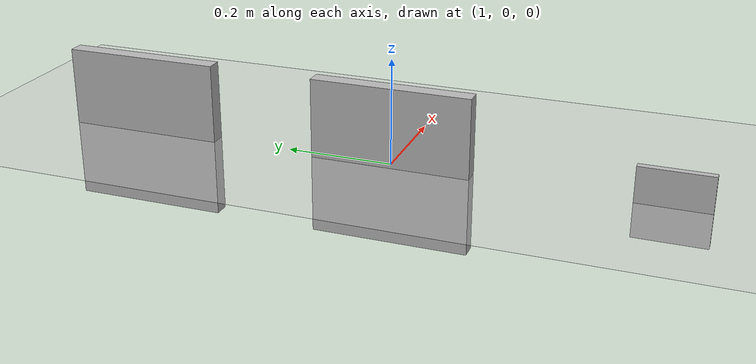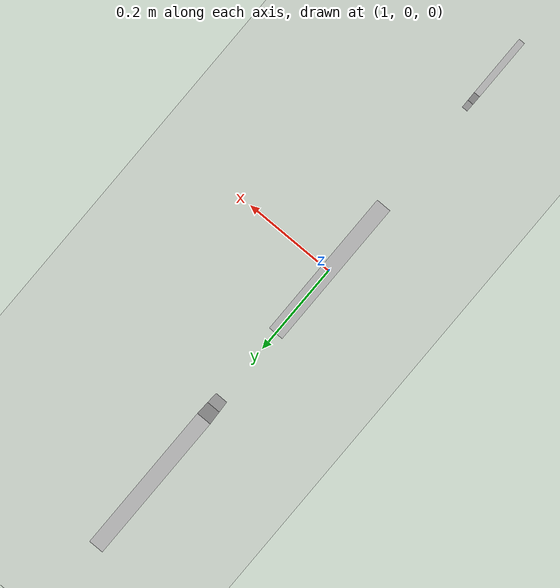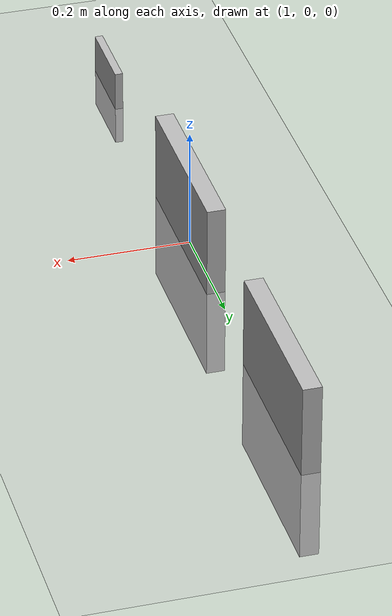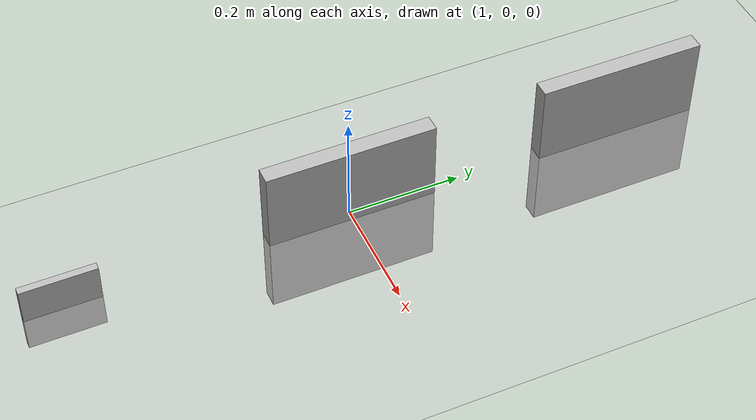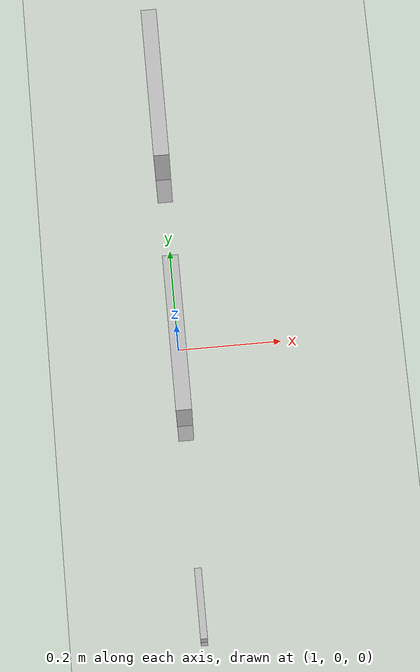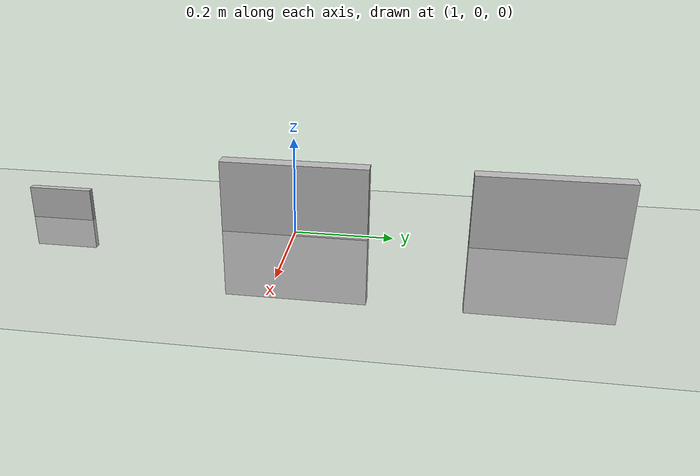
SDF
<?xml version="1.0" ?>

<sdf version="1.5">
	<world name="default">
		<!-- A global light source -->
		<include>
			<uri>model://sun</uri>
		</include>

		<!-- A ground plane -->
		<include>
			<uri>model://ground_plane</uri>
		</include>

        	<!-- aruco landmark 0 -->
		<include>
			<uri>model://aruco_marker_0</uri>
			<pose>1 -0.5 0 1.5708 0 0</pose>
		</include>

        	<!-- aruco landmark 1 -->
		<include>
			<uri>model://aruco_marker_1</uri>
			<pose>1 0 0 1.5708 0 0</pose>
		</include>

        	<!-- aruco landmark 2 -->
		<include>
			<uri>model://aruco_marker_2</uri>
			<pose>1 0.5 0 1.5708 0 0</pose>
		</include>
	</world>
</sdf>

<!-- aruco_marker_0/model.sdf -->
<sdf version="1.5">
  <model name="aruco_marker_0">
    <static>true</static>
    <link name="link">
      <collision name="collision">
        <geometry>
          <box>
            <size>0.01318 0.1318 0.1318</size>
          </box>
        </geometry>
        <surface>
          <friction>
            <ode>
              <mu>100</mu>
              <mu2>50</mu2>
            </ode>
          </friction>
        </surface>
      </collision>

      <visual name="visual">
        <geometry>
          <box>
            <size>0.01318 0.1318 0.1318</size>
          </box>
        </geometry>
        <material>
          <script>
            <uri>model://aruco_marker_0/materials/scripts</uri>
            <uri>model://aruco_marker_0/materials/textures</uri>
            <name>aruco_marker_0/Diffuse</name>
          </script>
        </material>
      </visual>
    </link>
  </model>
</sdf>

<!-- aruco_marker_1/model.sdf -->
<sdf version="1.5">
  <model name="aruco_marker_1">
    <static>false</static>
    <link name="link">
      <collision name="collision">
        <geometry>
          <box>
            <size>0.03 0.3 0.3</size>
          </box>
        </geometry>
        <surface>
          <friction>
            <ode>
              <mu>100</mu>
              <mu2>50</mu2>
            </ode>
          </friction>
        </surface>
      </collision>

      <visual name="visual">
        <geometry>
          <box>
            <size>0.03 0.3 0.3</size>
          </box>
        </geometry>
        <material>
          <script>
            <uri>model://aruco_marker_1/materials/scripts</uri>
            <uri>model://aruco_marker_1/materials/textures</uri>
            <name>aruco_marker_1/Diffuse</name>
          </script>
        </material>
      </visual>
    </link>
  </model>
</sdf>

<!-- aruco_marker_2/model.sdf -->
<sdf version="1.5">
  <model name="aruco_marker_2">
    <static>false</static>
    <link name="link">
      <collision name="collision">
        <geometry>
          <box>
            <size>0.03 0.3 0.3</size>
          </box>
        </geometry>
        <surface>
          <friction>
            <ode>
              <mu>100</mu>
              <mu2>50</mu2>
            </ode>
          </friction>
        </surface>
      </collision>

      <visual name="visual">
        <geometry>
          <box>
            <size>0.03 0.3 0.3</size>
          </box>
        </geometry>
        <material>
          <script>
            <uri>model://aruco_marker_2/materials/scripts</uri>
            <uri>model://aruco_marker_2/materials/textures</uri>
            <name>aruco_marker_2/Diffuse</name>
          </script>
        </material>
      </visual>
    </link>
  </model>
</sdf>
